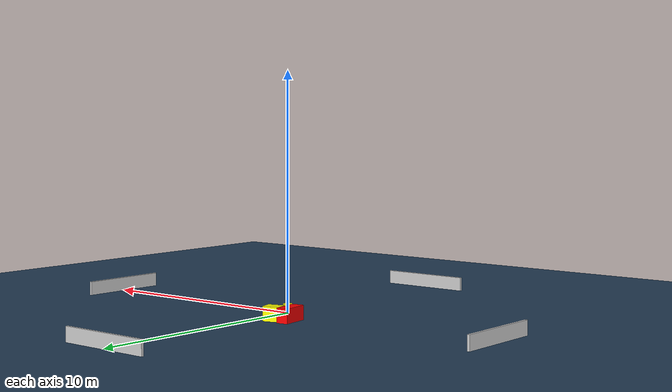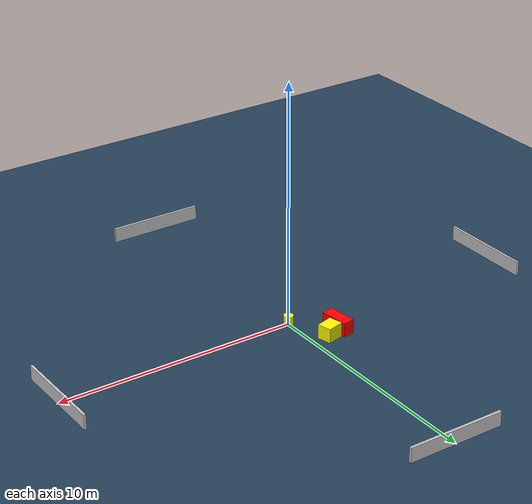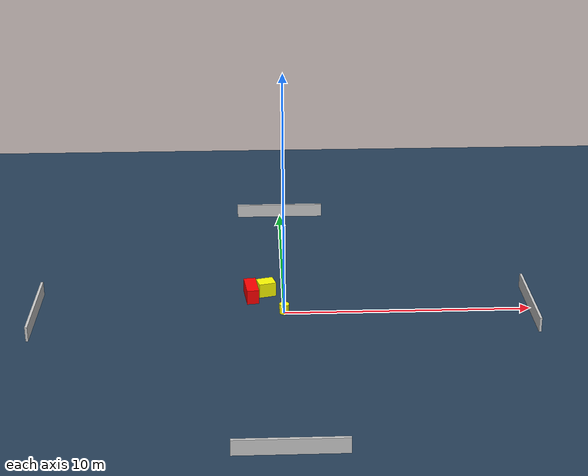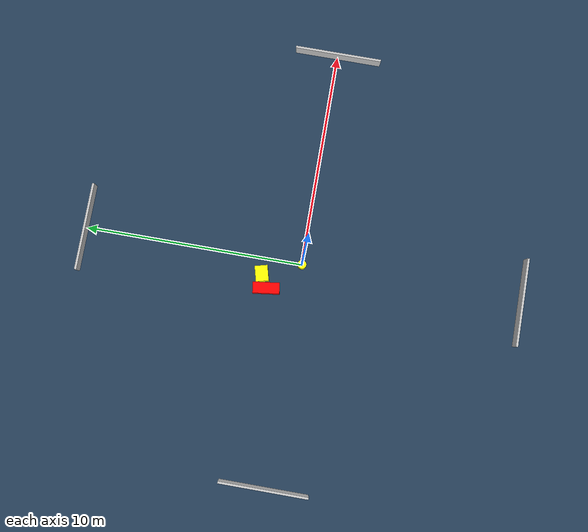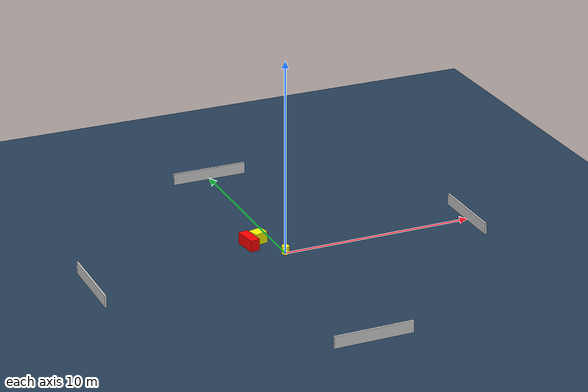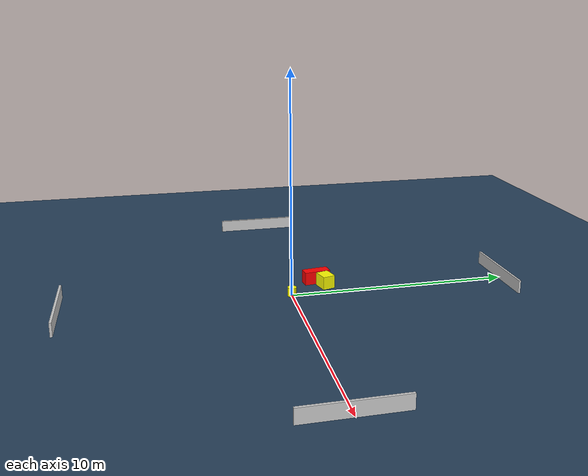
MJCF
<?xml version="1.0" ?>
<mujoco model="generated_environment">
  <option timestep="0.01" integrator="RK4" cone="elliptic"/>
  <default>
    <geom density="1"/>
  </default>
  <asset>
    <texture builtin="gradient" height="3072" name="skybox" rgb1="0.3 0.5 0.7" rgb2="0 0 0" type="skybox" width="512"/>
    <texture builtin="checker" height="300" name="groundplane" rgb1="0.2 0.3 0.4" rgb2="0.1 0.2 0.3" type="2d" width="300"/>
    <material name="groundplane" reflectance="0.2" texrepeat="5 5" texture="groundplane"/>
  </asset>
  <worldbody>
    <light dir="0 0 -1" directional="true" pos="0 0 1.5"/>
    <geom condim="3" friction="0.5 0.005 0.001" material="groundplane" name="floor" pos="0 0 0" size="0 0 0.05" type="plane"/>
    <body name="walls">
      <geom name="wall_1" condim="4" pos="-10.0 0.0 0.3" rgba="0.800000011920929 0.800000011920929 0.800000011920929 1.0" size="0.05 2.0 0.3" type="box"/>
      <geom name="wall_2" condim="4" pos="10.0 0.0 0.3" rgba="0.800000011920929 0.800000011920929 0.800000011920929 1.0" size="0.05 2.0 0.3" type="box"/>
      <geom name="wall_3" condim="4" pos="0.0 -10.0 0.3" rgba="0.800000011920929 0.800000011920929 0.800000011920929 1.0" size="2.0 0.05 0.3" type="box"/>
      <geom name="wall_4" condim="4" pos="0.0 10.0 0.3" rgba="0.800000011920929 0.800000011920929 0.800000011920929 1.0" size="2.0 0.05 0.3" type="box"/>
    </body>
    <body name="robot">
      <joint name="joint_x" type="slide" pos="0 0 0" axis="1 0 0"/>
      <joint name="joint_y" type="slide" pos="0 0 0" axis="0 1 0"/>
      <geom name="robot" type="cylinder" pos="0.0 0.0 0.2" size="0.2 0.2 0.0" mass="5.0" friction="1.0 0.005 0.0001" condim="4" rgba="1.0 1.0 0.0 1.0"/>
    </body>
    <body name="obstacle_1_movable">
      <geom name="obstacle_1_movable" condim="4" pos="-0.7242080702907774 1.7181509217762232 0.3" euler="0 0 15.07498873863164" friction="0.0 0.005 0.001" rgba="1.0 1.0 0.0 1.0" size="0.3534458986700745 0.2893707864233209 0.3" type="box" mass="0.1"/>
      <joint type="free"/>
    </body>
    <body name="obstacle_2_static">
      <geom name="obstacle_2_static" condim="4" pos="-1.3326326404152862 1.408569244010402 0.3" euler="0 0 187.37976196603768" friction="0.0 0.005 0.001" rgba="1.0 0.0 0.0 1.0" size="0.24717073709139462 0.6025831606796466 0.3" type="box"/>
    </body>
  </worldbody>
  <actuator>
    <motor name="actuator_x" joint="joint_x" gear="1" ctrlrange="-1 1"/>
    <motor name="actuator_y" joint="joint_y" gear="1" ctrlrange="-1 1"/>
  </actuator>
</mujoco>
